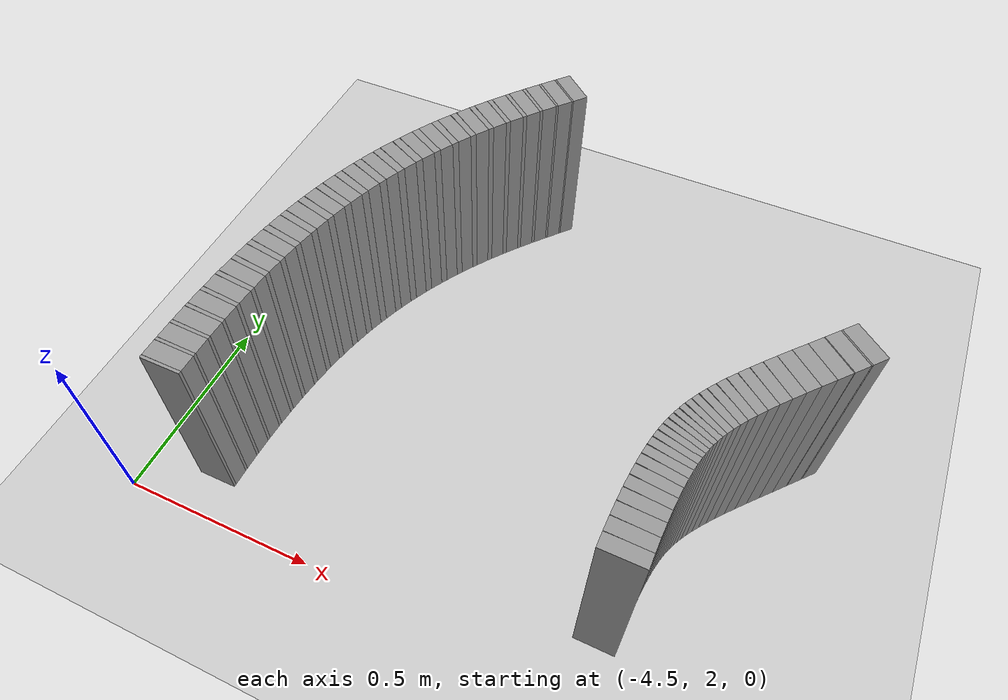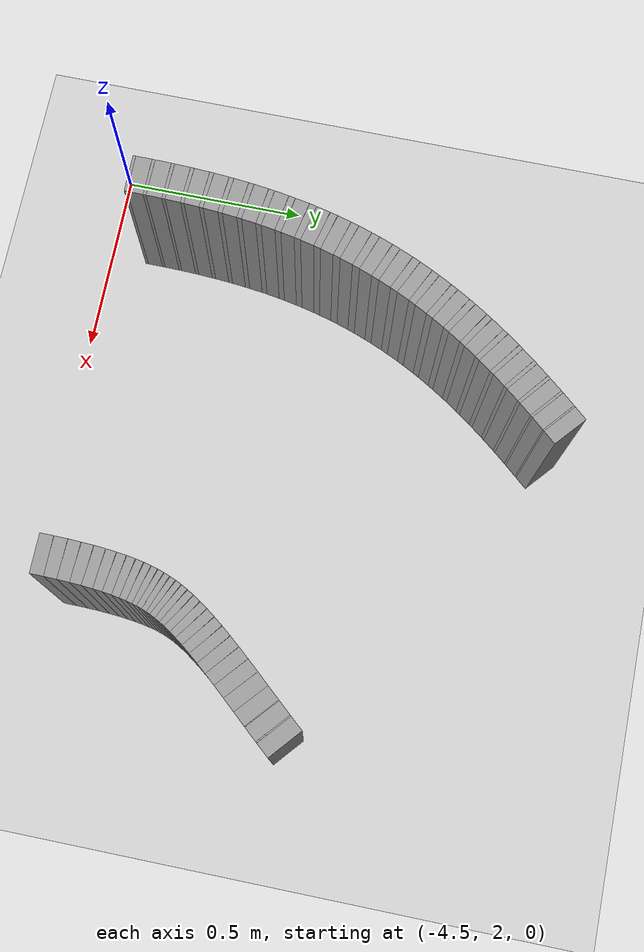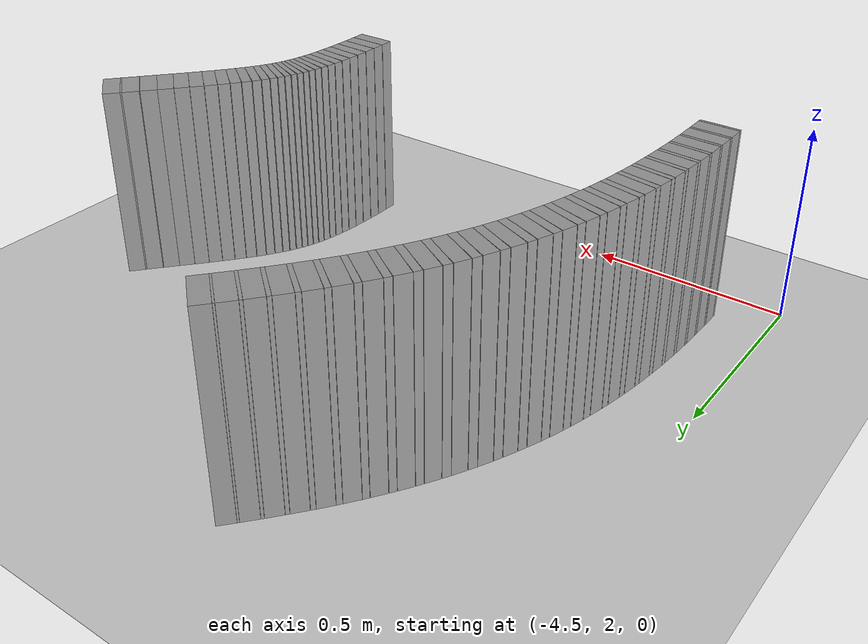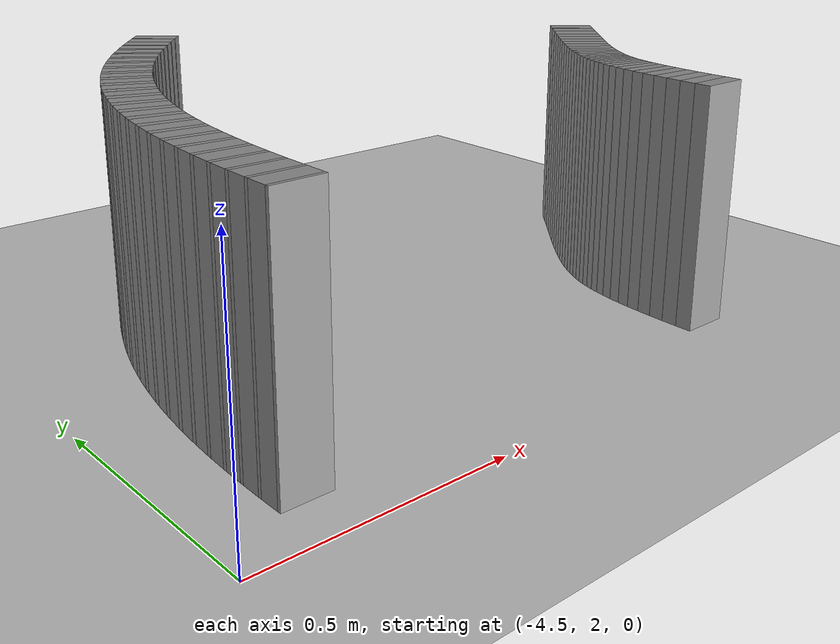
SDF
<sdf version="1.6">
 <world name="default">
  <include><uri>model://ground_plane</uri></include>
  <include><uri>model://sun</uri></include>
  <model name="wall_909_outward">
   <static>true</static>
   <link name="link">
    <collision name="collision">
     <geometry><box><size>0.0419745556017227 0.1 0.5</size></box></geometry>
    </collision>
    <visual name="visual">
     <geometry><box><size>0.0419745556017227 0.1 0.5</size></box></geometry>
     <material>
      <script><uri>file://media/materials/scripts/gazebo.material</uri><name>Gazebo/Gray</name></script>
     </material>
    </visual>
   </link>
   <pose>-3.0135326649670446 2.7645553285052182 0.25 0 0 -2.2796906015436953</pose>
  </model>
  <model name="wall_910_outward">
   <static>true</static>
   <link name="link">
    <collision name="collision">
     <geometry><box><size>0.0038442541309718944 0.1 0.5</size></box></geometry>
    </collision>
    <visual name="visual">
     <geometry><box><size>0.0038442541309718944 0.1 0.5</size></box></geometry>
     <material>
      <script><uri>file://media/materials/scripts/gazebo.material</uri><name>Gazebo/Gray</name></script>
     </material>
    </visual>
   </link>
   <pose>-3.0284521688805657 2.7471700290213708 0.25 0 0 -2.2835348651433045</pose>
  </model>
  <model name="wall_911_outward">
   <static>true</static>
   <link name="link">
    <collision name="collision">
     <geometry><box><size>0.04174719844510163 0.1 0.5</size></box></geometry>
    </collision>
    <visual name="visual">
     <geometry><box><size>0.04174719844510163 0.1 0.5</size></box></geometry>
     <material>
      <script><uri>file://media/materials/scripts/gazebo.material</uri><name>Gazebo/Gray</name></script>
     </material>
    </visual>
   </link>
   <pose>-3.043419088791568 2.7299759645674877 0.25 0 0 -2.287379128742932</pose>
  </model>
  <model name="wall_912_outward">
   <static>true</static>
   <link name="link">
    <collision name="collision">
     <geometry><box><size>0.0018224459277876729 0.1 0.5</size></box></geometry>
    </collision>
    <visual name="visual">
     <geometry><box><size>0.0018224459277876729 0.1 0.5</size></box></geometry>
     <material>
      <script><uri>file://media/materials/scripts/gazebo.material</uri><name>Gazebo/Gray</name></script>
     </material>
    </visual>
   </link>
   <pose>-3.057728867379958 2.7135501114306417 0.25 0 0 -2.2892015756794986</pose>
  </model>
  <model name="wall_913_outward">
   <static>true</static>
   <link name="link">
    <collision name="collision">
     <geometry><box><size>0.04133575827013945 0.1 0.5</size></box></geometry>
    </collision>
    <visual name="visual">
     <geometry><box><size>0.04133575827013945 0.1 0.5</size></box></geometry>
     <material>
      <script><uri>file://media/materials/scripts/gazebo.material</uri><name>Gazebo/Gray</name></script>
     </material>
    </visual>
   </link>
   <pose>-3.0719602409076434 2.6973289649741616 0.25 0 0 -2.2910240226161456</pose>
  </model>
  <model name="wall_914_outward">
   <static>true</static>
   <link name="link">
    <collision name="collision">
     <geometry><box><size>0.039814587345602365 0.1 0.5</size></box></geometry>
    </collision>
    <visual name="visual">
     <geometry><box><size>0.039814587345602365 0.1 0.5</size></box></geometry>
     <material>
      <script><uri>file://media/materials/scripts/gazebo.material</uri><name>Gazebo/Gray</name></script>
     </material>
    </visual>
   </link>
   <pose>-3.0987146115571638 2.6668240767798292 0.25 0 0 -2.2905415181057474</pose>
  </model>
  <model name="wall_915_outward">
   <static>true</static>
   <link name="link">
    <collision name="collision">
     <geometry><box><size>0.037309860496142794 0.1 0.5</size></box></geometry>
    </collision>
    <visual name="visual">
     <geometry><box><size>0.037309860496142794 0.1 0.5</size></box></geometry>
     <material>
      <script><uri>file://media/materials/scripts/gazebo.material</uri><name>Gazebo/Gray</name></script>
     </material>
    </visual>
   </link>
   <pose>-3.12406837688091 2.6377685529564325 0.25 0 0 -2.28583308934956</pose>
  </model>
  <model name="wall_916_outward">
   <static>true</static>
   <link name="link">
    <collision name="collision">
     <geometry><box><size>0.034755076385323234 0.1 0.5</size></box></geometry>
    </collision>
    <visual name="visual">
     <geometry><box><size>0.034755076385323234 0.1 0.5</size></box></geometry>
     <material>
      <script><uri>file://media/materials/scripts/gazebo.material</uri><name>Gazebo/Gray</name></script>
     </material>
    </visual>
   </link>
   <pose>-3.147574969666726 2.610460076313749 0.25 0 0 -2.27688071241777</pose>
  </model>
  <model name="wall_917_outward">
   <static>true</static>
   <link name="link">
    <collision name="collision">
     <geometry><box><size>0.03216466017400099 0.1 0.5</size></box></geometry>
    </collision>
    <visual name="visual">
     <geometry><box><size>0.03216466017400099 0.1 0.5</size></box></geometry>
     <material>
      <script><uri>file://media/materials/scripts/gazebo.material</uri><name>Gazebo/Gray</name></script>
     </material>
    </visual>
   </link>
   <pose>-3.1691227966086686 2.5848631047142794 0.25 0 0 -2.263641472560386</pose>
  </model>
  <model name="wall_918_outward">
   <static>true</static>
   <link name="link">
    <collision name="collision">
     <geometry><box><size>0.029571068474217883 0.1 0.5</size></box></geometry>
    </collision>
    <visual name="visual">
     <geometry><box><size>0.029571068474217883 0.1 0.5</size></box></geometry>
     <material>
      <script><uri>file://media/materials/scripts/gazebo.material</uri><name>Gazebo/Gray</name></script>
     </material>
    </visual>
   </link>
   <pose>-3.1886381864899103 2.5609486408674607 0.25 0 0 -2.2461169072106277</pose>
  </model>
  <model name="wall_919_outward">
   <static>true</static>
   <link name="link">
    <collision name="collision">
     <geometry><box><size>0.027004095124783817 0.1 0.5</size></box></geometry>
    </collision>
    <visual name="visual">
     <geometry><box><size>0.027004095124783817 0.1 0.5</size></box></geometry>
     <material>
      <script><uri>file://media/materials/scripts/gazebo.material</uri><name>Gazebo/Gray</name></script>
     </material>
    </visual>
   </link>
   <pose>-3.2060908213170416 2.53868884945527 0.25 0 0 -2.2243586358879615</pose>
  </model>
  <model name="wall_920_outward">
   <static>true</static>
   <link name="link">
    <collision name="collision">
     <geometry><box><size>0.024508053875466323 0.1 0.5</size></box></geometry>
    </collision>
    <visual name="visual">
     <geometry><box><size>0.024508053875466323 0.1 0.5</size></box></geometry>
     <material>
      <script><uri>file://media/materials/scripts/gazebo.material</uri><name>Gazebo/Gray</name></script>
     </material>
    </visual>
   </link>
   <pose>-3.2214964800221626 2.5180507774665126 0.25 0 0 -2.1984521246347404</pose>
  </model>
  <model name="wall_921_outward">
   <static>true</static>
   <link name="link">
    <collision name="collision">
     <geometry><box><size>0.022133533952846295 0.1 0.5</size></box></geometry>
    </collision>
    <visual name="visual">
     <geometry><box><size>0.022133533952846295 0.1 0.5</size></box></geometry>
     <material>
      <script><uri>file://media/materials/scripts/gazebo.material</uri><name>Gazebo/Gray</name></script>
     </material>
    </visual>
   </link>
   <pose>-3.2349211766748116 2.4989846827942146 0.25 0 0 -2.1685826450441787</pose>
  </model>
  <model name="wall_922_outward">
   <static>true</static>
   <link name="link">
    <collision name="collision">
     <geometry><box><size>0.019943582292460026 0.1 0.5</size></box></geometry>
    </collision>
    <visual name="visual">
     <geometry><box><size>0.019943582292460026 0.1 0.5</size></box></geometry>
     <material>
      <script><uri>file://media/materials/scripts/gazebo.material</uri><name>Gazebo/Gray</name></script>
     </material>
    </visual>
   </link>
   <pose>-3.2464820028141594 2.481410732345762 0.25 0 0 -2.1349938035231513</pose>
  </model>
  <model name="wall_923_outward">
   <static>true</static>
   <link name="link">
    <collision name="collision">
     <geometry><box><size>0.018015155847510837 0.1 0.5</size></box></geometry>
    </collision>
    <visual name="visual">
     <geometry><box><size>0.018015155847510837 0.1 0.5</size></box></geometry>
     <material>
      <script><uri>file://media/materials/scripts/gazebo.material</uri><name>Gazebo/Gray</name></script>
     </material>
    </visual>
   </link>
   <pose>-3.2563467035604603 2.46520019048793 0.25 0 0 -2.098067568934404</pose>
  </model>
  <model name="wall_924_outward">
   <static>true</static>
   <link name="link">
    <collision name="collision">
     <geometry><box><size>0.016430310365611652 0.1 0.5</size></box></geometry>
    </collision>
    <visual name="visual">
     <geometry><box><size>0.016430310365611652 0.1 0.5</size></box></geometry>
     <material>
      <script><uri>file://media/materials/scripts/gazebo.material</uri><name>Gazebo/Gray</name></script>
     </material>
    </visual>
   </link>
   <pose>-3.2647271978157577 2.450157824180835 0.25 0 0 -2.0582902916868373</pose>
  </model>
  <model name="wall_925_outward">
   <static>true</static>
   <link name="link">
    <collision name="collision">
     <geometry><box><size>0.015279364430418777 0.1 0.5</size></box></geometry>
    </collision>
    <visual name="visual">
     <geometry><box><size>0.015279364430418777 0.1 0.5</size></box></geometry>
     <material>
      <script><uri>file://media/materials/scripts/gazebo.material</uri><name>Gazebo/Gray</name></script>
     </material>
    </visual>
   </link>
   <pose>-3.2718673906353346 2.4360056891312913 0.25 0 0 -2.0163103106993865</pose>
  </model>
  <model name="wall_926_outward">
   <static>true</static>
   <link name="link">
    <collision name="collision">
     <geometry><box><size>0.014626676339132439 0.1 0.5</size></box></geometry>
    </collision>
    <visual name="visual">
     <geometry><box><size>0.014626676339132439 0.1 0.5</size></box></geometry>
     <material>
      <script><uri>file://media/materials/scripts/gazebo.material</uri><name>Gazebo/Gray</name></script>
     </material>
    </visual>
   </link>
   <pose>-3.2780216006265825 2.4223816940580702 0.25 0 0 -1.9728989055327766</pose>
  </model>
  <model name="wall_927_outward">
   <static>true</static>
   <link name="link">
    <collision name="collision">
     <geometry><box><size>0.014528052600475112 0.1 0.5</size></box></geometry>
    </collision>
    <visual name="visual">
     <geometry><box><size>0.014528052600475112 0.1 0.5</size></box></geometry>
     <material>
      <script><uri>file://media/materials/scripts/gazebo.material</uri><name>Gazebo/Gray</name></script>
     </material>
    </visual>
   </link>
   <pose>-3.2834297649840813 2.4088484570207322 0.25 0 0 -1.9289039464015667</pose>
  </model>
  <model name="wall_928_outward">
   <static>true</static>
   <link name="link">
    <collision name="collision">
     <geometry><box><size>0.015002083608098278 0.1 0.5</size></box></geometry>
    </collision>
    <visual name="visual">
     <geometry><box><size>0.015002083608098278 0.1 0.5</size></box></geometry>
     <material>
      <script><uri>file://media/materials/scripts/gazebo.material</uri><name>Gazebo/Gray</name></script>
     </material>
    </visual>
   </link>
   <pose>-3.2882959667841662 2.3949120457588577 0.25 0 0 -1.8852629850738096</pose>
  </model>
  <model name="wall_929_outward">
   <static>true</static>
   <link name="link">
    <collision name="collision">
     <geometry><box><size>0.016028910324818856 0.1 0.5</size></box></geometry>
    </collision>
    <visual name="visual">
     <geometry><box><size>0.016028910324818856 0.1 0.5</size></box></geometry>
     <material>
      <script><uri>file://media/materials/scripts/gazebo.material</uri><name>Gazebo/Gray</name></script>
     </material>
    </visual>
   </link>
   <pose>-3.2927698019674296 2.380059187326829 0.25 0 0 -1.8428665278918794</pose>
  </model>
  <model name="wall_930_outward">
   <static>true</static>
   <link name="link">
    <collision name="collision">
     <geometry><box><size>0.017539279231176423 0.1 0.5</size></box></geometry>
    </collision>
    <visual name="visual">
     <geometry><box><size>0.017539279231176423 0.1 0.5</size></box></geometry>
     <material>
      <script><uri>file://media/materials/scripts/gazebo.material</uri><name>Gazebo/Gray</name></script>
     </material>
    </visual>
   </link>
   <pose>-3.2969378271212157 2.3638043655285683 0.25 0 0 -1.8025594237730262</pose>
  </model>
  <model name="wall_931_outward">
   <static>true</static>
   <link name="link">
    <collision name="collision">
     <geometry><box><size>0.019429987067052068 0.1 0.5</size></box></geometry>
    </collision>
    <visual name="visual">
     <geometry><box><size>0.019429987067052068 0.1 0.5</size></box></geometry>
     <material>
      <script><uri>file://media/materials/scripts/gazebo.material</uri><name>Gazebo/Gray</name></script>
     </material>
    </visual>
   </link>
   <pose>-3.3008266743758155 2.3457367666178754 0.25 0 0 -1.7649648290323132</pose>
  </model>
  <model name="wall_932_outward">
   <static>true</static>
   <link name="link">
    <collision name="collision">
     <geometry><box><size>0.021591316623172055 0.1 0.5</size></box></geometry>
    </collision>
    <visual name="visual">
     <geometry><box><size>0.021591316623172055 0.1 0.5</size></box></geometry>
     <material>
      <script><uri>file://media/materials/scripts/gazebo.material</uri><name>Gazebo/Gray</name></script>
     </material>
    </visual>
   </link>
   <pose>-3.3044185074515884 2.3255461408740774 0.25 0 0 -1.7305498512555522</pose>
  </model>
  <model name="wall_933_outward">
   <static>true</static>
   <link name="link">
    <collision name="collision">
     <geometry><box><size>0.02389491306081609 0.1 0.5</size></box></geometry>
    </collision>
    <visual name="visual">
     <geometry><box><size>0.02389491306081609 0.1 0.5</size></box></geometry>
     <material>
      <script><uri>file://media/materials/scripts/gazebo.material</uri><name>Gazebo/Gray</name></script>
     </material>
    </visual>
   </link>
   <pose>-3.3076699003500067 2.303039390633496 0.25 0 0 -1.6995535963720907</pose>
  </model>
  <model name="wall_934_outward">
   <static>true</static>
   <link name="link">
    <collision name="collision">
     <geometry><box><size>0.02620466319532006 0.1 0.5</size></box></geometry>
    </collision>
    <visual name="visual">
     <geometry><box><size>0.02620466319532006 0.1 0.5</size></box></geometry>
     <material>
      <script><uri>file://media/materials/scripts/gazebo.material</uri><name>Gazebo/Gray</name></script>
     </material>
    </visual>
   </link>
   <pose>-3.3105276391162253 2.2781555339091257 0.25 0 0 -1.6719940272295823</pose>
  </model>
  <model name="wall_935_outward">
   <static>true</static>
   <link name="link">
    <collision name="collision">
     <geometry><box><size>0.028414012027109463 0.1 0.5</size></box></geometry>
    </collision>
    <visual name="visual">
     <geometry><box><size>0.028414012027109463 0.1 0.5</size></box></geometry>
     <material>
      <script><uri>file://media/materials/scripts/gazebo.material</uri><name>Gazebo/Gray</name></script>
     </material>
    </visual>
   </link>
   <pose>-3.3129421031068045 2.2509551665681977 0.25 0 0 -1.6476509926844043</pose>
  </model>
  <model name="wall_936_outward">
   <static>true</static>
   <link name="link">
    <collision name="collision">
     <geometry><box><size>0.030444279558188493 0.1 0.5</size></box></geometry>
    </collision>
    <visual name="visual">
     <geometry><box><size>0.030444279558188493 0.1 0.5</size></box></geometry>
     <material>
      <script><uri>file://media/materials/scripts/gazebo.material</uri><name>Gazebo/Gray</name></script>
     </material>
    </visual>
   </link>
   <pose>-3.314875818794246 2.2215913138131116 0.25 0 0 -1.6261989795383085</pose>
  </model>
  <model name="wall_937_outward">
   <static>true</static>
   <link name="link">
    <collision name="collision">
     <geometry><box><size>0.03221851788245754 0.1 0.5</size></box></geometry>
    </collision>
    <visual name="visual">
     <geometry><box><size>0.03221851788245754 0.1 0.5</size></box></geometry>
     <material>
      <script><uri>file://media/materials/scripts/gazebo.material</uri><name>Gazebo/Gray</name></script>
     </material>
    </visual>
   </link>
   <pose>-3.3163048937256683 2.1902939386191482 0.25 0 0 -1.6071908499437895</pose>
  </model>
  <model name="wall_938_outward">
   <static>true</static>
   <link name="link">
    <collision name="collision">
     <geometry><box><size>0.03369619608806785 0.1 0.5</size></box></geometry>
    </collision>
    <visual name="visual">
     <geometry><box><size>0.03369619608806785 0.1 0.5</size></box></geometry>
     <material>
      <script><uri>file://media/materials/scripts/gazebo.material</uri><name>Gazebo/Gray</name></script>
     </material>
    </visual>
   </link>
   <pose>-3.3172159920450426 2.1573503830474845 0.25 0 0 -1.590083909845849</pose>
  </model>
  <model name="wall_939_outward">
   <static>true</static>
   <link name="link">
    <collision name="collision">
     <geometry><box><size>0.03486434552134512 0.1 0.5</size></box></geometry>
    </collision>
    <visual name="visual">
     <geometry><box><size>0.03486434552134512 0.1 0.5</size></box></geometry>
     <material>
      <script><uri>file://media/materials/scripts/gazebo.material</uri><name>Gazebo/Gray</name></script>
     </material>
    </visual>
   </link>
   <pose>-3.317602885910296 2.1230733560793364 0.25 0 0 -1.574350390533005</pose>
  </model>
  <model name="wall_567_inward">
   <static>true</static>
   <link name="link">
    <collision name="collision">
     <geometry><box><size>0.04072507904058937 0.1 0.5</size></box></geometry>
    </collision>
    <visual name="visual">
     <geometry><box><size>0.04072507904058937 0.1 0.5</size></box></geometry>
     <material>
      <script><uri>file://media/materials/scripts/gazebo.material</uri><name>Gazebo/Gray</name></script>
     </material>
    </visual>
   </link>
   <pose>-3.87948533511668 3.293013164258174 0.25 0 0 -2.2858330893495604</pose>
  </model>
  <model name="wall_568_inward">
   <static>true</static>
   <link name="link">
    <collision name="collision">
     <geometry><box><size>0.004476173518231503 0.1 0.5</size></box></geometry>
    </collision>
    <visual name="visual">
     <geometry><box><size>0.004476173518231503 0.1 0.5</size></box></geometry>
     <material>
      <script><uri>file://media/materials/scripts/gazebo.material</uri><name>Gazebo/Gray</name></script>
     </material>
    </visual>
   </link>
   <pose>-3.894295747666076 3.2759415774770755 0.25 0 0 -2.2813569008836607</pose>
  </model>
  <model name="wall_569_inward">
   <static>true</static>
   <link name="link">
    <collision name="collision">
     <geometry><box><size>0.04030304387587723 0.1 0.5</size></box></geometry>
    </collision>
    <visual name="visual">
     <geometry><box><size>0.04030304387587723 0.1 0.5</size></box></geometry>
     <material>
      <script><uri>file://media/materials/scripts/gazebo.material</uri><name>Gazebo/Gray</name></script>
     </material>
    </visual>
   </link>
   <pose>-3.9088310624224936 3.258911653845773 0.25 0 0 -2.2768807124177566</pose>
  </model>
  <model name="wall_570_inward">
   <static>true</static>
   <link name="link">
    <collision name="collision">
     <geometry><box><size>0.006619571584196863 0.1 0.5</size></box></geometry>
    </collision>
    <visual name="visual">
     <geometry><box><size>0.006619571584196863 0.1 0.5</size></box></geometry>
     <material>
      <script><uri>file://media/materials/scripts/gazebo.material</uri><name>Gazebo/Gray</name></script>
     </material>
    </visual>
   </link>
   <pose>-3.924037432741721 3.2410455871410218 0.25 0 0 -2.270261092489117</pose>
  </model>
  <model name="wall_571_inward">
   <static>true</static>
   <link name="link">
    <collision name="collision">
     <geometry><box><size>0.039855771949156515 0.1 0.5</size></box></geometry>
    </collision>
    <visual name="visual">
     <geometry><box><size>0.039855771949156515 0.1 0.5</size></box></geometry>
     <material>
      <script><uri>file://media/materials/scripts/gazebo.material</uri><name>Gazebo/Gray</name></script>
     </material>
    </visual>
   </link>
   <pose>-3.9388968169506464 3.223179832192452 0.25 0 0 -2.2636414725603937</pose>
  </model>
  <model name="wall_572_inward">
   <static>true</static>
   <link name="link">
    <collision name="collision">
     <geometry><box><size>0.008762170550812852 0.1 0.5</size></box></geometry>
    </collision>
    <visual name="visual">
     <geometry><box><size>0.008762170550812852 0.1 0.5</size></box></geometry>
     <material>
      <script><uri>file://media/materials/scripts/gazebo.material</uri><name>Gazebo/Gray</name></script>
     </material>
    </visual>
   </link>
   <pose>-3.9543940154342287 3.204451345352645 0.25 0 0 -2.2548791898855116</pose>
  </model>
  <model name="wall_573_inward">
   <static>true</static>
   <link name="link">
    <collision name="collision">
     <geometry><box><size>0.03939210438152865 0.1 0.5</size></box></geometry>
    </collision>
    <visual name="visual">
     <geometry><box><size>0.03939210438152865 0.1 0.5</size></box></geometry>
     <material>
      <script><uri>file://media/materials/scripts/gazebo.material</uri><name>Gazebo/Gray</name></script>
     </material>
    </visual>
   </link>
   <pose>-3.969475636072412 3.1856831104226413 0.25 0 0 -2.2461169072106246</pose>
  </model>
  <model name="wall_574_inward">
   <static>true</static>
   <link name="link">
    <collision name="collision">
     <geometry><box><size>0.010878921061513593 0.1 0.5</size></box></geometry>
    </collision>
    <visual name="visual">
     <geometry><box><size>0.010878921061513593 0.1 0.5</size></box></geometry>
     <material>
      <script><uri>file://media/materials/scripts/gazebo.material</uri><name>Gazebo/Gray</name></script>
     </material>
    </visual>
   </link>
   <pose>-3.985142652552049 3.166027935165401 0.25 0 0 -2.235237771549298</pose>
  </model>
  <model name="wall_575_inward">
   <static>true</static>
   <link name="link">
    <collision name="collision">
     <geometry><box><size>0.038920867635262854 0.1 0.5</size></box></geometry>
    </collision>
    <visual name="visual">
     <geometry><box><size>0.038920867635262854 0.1 0.5</size></box></geometry>
     <material>
      <script><uri>file://media/materials/scripts/gazebo.material</uri><name>Gazebo/Gray</name></script>
     </material>
    </visual>
   </link>
   <pose>-4.000329032914957 3.1462955743914423 0.25 0 0 -2.224358635887945</pose>
  </model>
  <model name="wall_576_inward">
   <static>true</static>
   <link name="link">
    <collision name="collision">
     <geometry><box><size>0.012952893398692204 0.1 0.5</size></box></geometry>
    </collision>
    <visual name="visual">
     <geometry><box><size>0.012952893398692204 0.1 0.5</size></box></geometry>
     <material>
      <script><uri>file://media/materials/scripts/gazebo.material</uri><name>Gazebo/Gray</name></script>
     </material>
    </visual>
   </link>
   <pose>-4.0160322034412355 3.125653116695054 0.25 0 0 -2.2114053802613394</pose>
  </model>
  <model name="wall_577_inward">
   <static>true</static>
   <link name="link">
    <collision name="collision">
     <geometry><box><size>0.03845296908134382 0.1 0.5</size></box></geometry>
    </collision>
    <visual name="visual">
     <geometry><box><size>0.03845296908134382 0.1 0.5</size></box></geometry>
     <material>
      <script><uri>file://media/materials/scripts/gazebo.material</uri><name>Gazebo/Gray</name></script>
     </material>
    </visual>
   </link>
   <pose>-4.031193804109228 3.104898703980974 0.25 0 0 -2.198452124634742</pose>
  </model>
  <model name="wall_578_inward">
   <static>true</static>
   <link name="link">
    <collision name="collision"><geometry><box><size>0.014934184611355 0.1 0.5</size></box></geometry></collision>
    <visual name="visual">
     <geometry><box><size>0.014934184611355 0.1 0.5</size></box></geometry>
     <material>
      <script><uri>file://media/materials/scripts/gazebo.material</uri><name>Gazebo/Gray</name></script>
     </material>
    </visual>
   </link>
   <pose>-4.046778829457251 3.083227940070208 0.25 0 0 -2.183517384839459</pose>
  </model>
  <model name="wall_579_inward">
   <static>true</static>
   <link name="link">
    <collision name="collision">
     <geometry><box><size>0.03799945904439414 0.1 0.5</size></box></geometry>
    </collision>
    <visual name="visual">
     <geometry><box><size>0.03799945904439414 0.1 0.5</size></box></geometry>
     <material>
      <script><uri>file://media/materials/scripts/gazebo.material</uri><name>Gazebo/Gray</name></script>
     </material>
    </visual>
   </link>
   <pose>-4.061766436663962 3.0614143515469077 0.25 0 0 -2.16858264504418</pose>
  </model>
  <model name="wall_580_inward">
   <static>true</static>
   <link name="link">
    <collision name="collision">
     <geometry><box><size>0.01679363128671919 0.1 0.5</size></box></geometry>
    </collision>
    <visual name="visual">
     <geometry><box><size>0.01679363128671919 0.1 0.5</size></box></geometry>
     <material>
      <script><uri>file://media/materials/scripts/gazebo.material</uri><name>Gazebo/Gray</name></script>
     </material>
    </visual>
   </link>
   <pose>-4.0770683720087835 3.038690433203353 0.25 0 0 -2.1517882242836763</pose>
  </model>
  <model name="wall_581_inward">
   <static>true</static>
   <link name="link">
    <collision name="collision">
     <geometry><box><size>0.03757419000881924 0.1 0.5</size></box></geometry>
    </collision>
    <visual name="visual">
     <geometry><box><size>0.03757419000881924 0.1 0.5</size></box></geometry>
     <material>
      <script><uri>file://media/materials/scripts/gazebo.material</uri><name>Gazebo/Gray</name></script>
     </material>
    </visual>
   </link>
   <pose>-4.091723163056766 3.0157959446919493 0.25 0 0 -2.134993803523162</pose>
  </model>
  <model name="wall_582_inward">
   <static>true</static>
   <link name="link">
    <collision name="collision">
     <geometry><box><size>0.018462068340401403 0.1 0.5</size></box></geometry>
    </collision>
    <visual name="visual">
     <geometry><box><size>0.018462068340401403 0.1 0.5</size></box></geometry>
     <material>
      <script><uri>file://media/materials/scripts/gazebo.material</uri><name>Gazebo/Gray</name></script>
     </material>
    </visual>
   </link>
   <pose>-4.106560664327359 2.992030318209004 0.25 0 0 -2.1165306862287534</pose>
  </model>
  <model name="wall_583_inward">
   <static>true</static>
   <link name="link">
    <collision name="collision">
     <geometry><box><size>0.03719339431382774 0.1 0.5</size></box></geometry>
    </collision>
    <visual name="visual">
     <geometry><box><size>0.03719339431382774 0.1 0.5</size></box></geometry>
     <material>
      <script><uri>file://media/materials/scripts/gazebo.material</uri><name>Gazebo/Gray</name></script>
     </material>
    </visual>
   </link>
   <pose>-4.120709426559133 2.968069169637321 0.25 0 0 -2.098067568934416</pose>
  </model>
  <model name="wall_584_inward">
   <static>true</static>
   <link name="link">
    <collision name="collision">
     <geometry><box><size>0.01988732746487957 0.1 0.5</size></box></geometry>
    </collision>
    <visual name="visual">
     <geometry><box><size>0.01988732746487957 0.1 0.5</size></box></geometry>
     <material>
      <script><uri>file://media/materials/scripts/gazebo.material</uri><name>Gazebo/Gray</name></script>
     </material>
    </visual>
   </link>
   <pose>-4.134898397443019 2.943307260157999 0.25 0 0 -2.0781789303105906</pose>
  </model>
  <model name="wall_585_inward">
   <static>true</static>
   <link name="link">
    <collision name="collision">
     <geometry><box><size>0.036872477882333034 0.1 0.5</size></box></geometry>
    </collision>
    <visual name="visual">
     <geometry><box><size>0.036872477882333034 0.1 0.5</size></box></geometry>
     <material>
      <script><uri>file://media/materials/scripts/gazebo.material</uri><name>Gazebo/Gray</name></script>
     </material>
    </visual>
   </link>
   <pose>-4.148365715434515 2.9183277143434863 0.25 0 0 -2.058290291686828</pose>
  </model>
  <model name="wall_586_inward">
   <static>true</static>
   <link name="link">
    <collision name="collision">
     <geometry><box><size>0.020988449233719824 0.1 0.5</size></box></geometry>
    </collision>
    <visual name="visual">
     <geometry><box><size>0.020988449233719824 0.1 0.5</size></box></geometry>
     <material>
      <script><uri>file://media/materials/scripts/gazebo.material</uri><name>Gazebo/Gray</name></script>
     </material>
    </visual>
   </link>
   <pose>-4.161721445637385 2.8926662460529027 0.25 0 0 -2.037300301193121</pose>
  </model>
  <model name="wall_587_inward">
   <static>true</static>
   <link name="link">
    <collision name="collision">
     <geometry><box><size>0.03663045725098112 0.1 0.5</size></box></geometry>
    </collision>
    <visual name="visual">
     <geometry><box><size>0.03663045725098112 0.1 0.5</size></box></geometry>
     <material>
      <script><uri>file://media/materials/scripts/gazebo.material</uri><name>Gazebo/Gray</name></script>
     </material>
    </visual>
   </link>
   <pose>-4.174333827522865 2.8667659035615003 0.25 0 0 -2.016310310699372</pose>
  </model>
  <model name="wall_588_inward">
   <static>true</static>
   <link name="link">
    <collision name="collision">
     <geometry><box><size>0.021703998228274162 0.1 0.5</size></box></geometry>
    </collision>
    <visual name="visual">
     <geometry><box><size>0.021703998228274162 0.1 0.5</size></box></geometry>
     <material>
      <script><uri>file://media/materials/scripts/gazebo.material</uri><name>Gazebo/Gray</name></script>
     </material>
    </visual>
   </link>
   <pose>-4.186688977455905 2.840346520411699 0.25 0 0 -1.99460460811613</pose>
  </model>
  <model name="wall_589_inward">
   <static>true</static>
   <link name="link">
    <collision name="collision">
     <geometry><box><size>0.03648174653025941 0.1 0.5</size></box></geometry>
    </collision>
    <visual name="visual">
     <geometry><box><size>0.03648174653025941 0.1 0.5</size></box></geometry>
     <material>
      <script><uri>file://media/materials/scripts/gazebo.material</uri><name>Gazebo/Gray</name></script>
     </material>
    </visual>
   </link>
   <pose>-4.19829033724028 2.813668619136555 0.25 0 0 -1.9728989055327943</pose>
  </model>
  <model name="wall_590_inward">
   <static>true</static>
   <link name="link">
    <collision name="collision">
     <geometry><box><size>0.0219957055517571 0.1 0.5</size></box></geometry>
    </collision>
    <visual name="visual">
     <geometry><box><size>0.0219957055517571 0.1 0.5</size></box></geometry>
     <material>
      <script><uri>file://media/materials/scripts/gazebo.material</uri><name>Gazebo/Gray</name></script>
     </material>
    </visual>
   </link>
   <pose>-4.209509379579554 2.7866697465638164 0.25 0 0 -1.9509014259672064</pose>
  </model>
  <model name="wall_591_inward">
   <static>true</static>
   <link name="link">
    <collision name="collision">
     <geometry><box><size>0.03644053902183186 0.1 0.5</size></box></geometry>
    </collision>
    <visual name="visual">
     <geometry><box><size>0.03644053902183186 0.1 0.5</size></box></geometry>
     <material>
      <script><uri>file://media/materials/scripts/gazebo.material</uri><name>Gazebo/Gray</name></script>
     </material>
    </visual>
   </link>
   <pose>-4.21997603225719 2.759392450289378 0.25 0 0 -1.9289039464015412</pose>
  </model>
  <model name="wall_592_inward">
   <static>true</static>
   <link name="link">
    <collision name="collision">
     <geometry><box><size>0.021818749128577192 0.1 0.5</size></box></geometry>
    </collision>
    <visual name="visual">
     <geometry><box><size>0.021818749128577192 0.1 0.5</size></box></geometry>
     <material>
      <script><uri>file://media/materials/scripts/gazebo.material</uri><name>Gazebo/Gray</name></script>
     </material>
    </visual>
   </link>
   <pose>-4.229962207173692 2.732029741425337 0.25 0 0 -1.907083465737679</pose>
  </model>
  <model name="wall_593_inward">
   <static>true</static>
   <link name="link">
    <collision name="collision">
     <geometry><box><size>0.03651475805059908 0.1 0.5</size></box></geometry>
    </collision>
    <visual name="visual">
     <geometry><box><size>0.03651475805059908 0.1 0.5</size></box></geometry>
     <material>
      <script><uri>file://media/materials/scripts/gazebo.material</uri><name>Gazebo/Gray</name></script>
     </material>
    </visual>
   </link>
   <pose>-4.239209309149241 2.704369376475616 0.25 0 0 -1.8852629850738107</pose>
  </model>
  <model name="wall_594_inward">
   <static>true</static>
   <link name="link">
    <collision name="collision">
     <geometry><box><size>0.021196641003332895 0.1 0.5</size></box></geometry>
    </collision>
    <visual name="visual">
     <geometry><box><size>0.021196641003332895 0.1 0.5</size></box></geometry>
     <material>
      <script><uri>file://media/materials/scripts/gazebo.material</uri><name>Gazebo/Gray</name></script>
     </material>
    </visual>
   </link>
   <pose>-4.247920277305251 2.6768614961279185 0.25 0 0 -1.864064756482798</pose>
  </model>
  <model name="wall_595_inward">
   <static>true</static>
   <link name="link">
    <collision name="collision">
     <geometry><box><size>0.03670775306054812 0.1 0.5</size></box></geometry>
    </collision>
    <visual name="visual">
     <geometry><box><size>0.03670775306054812 0.1 0.5</size></box></geometry>
     <material>
      <script><uri>file://media/materials/scripts/gazebo.material</uri><name>Gazebo/Gray</name></script>
     </material>
    </visual>
   </link>
   <pose>-4.255916232812925 2.6490369206380775 0.25 0 0 -1.8428665278918839</pose>
  </model>
  <model name="wall_596_inward">
   <static>true</static>
   <link name="link">
    <collision name="collision">
     <geometry><box><size>0.02015218780700805 0.1 0.5</size></box></geometry>
    </collision>
    <visual name="visual">
     <geometry><box><size>0.02015218780700805 0.1 0.5</size></box></geometry>
     <material>
      <script><uri>file://media/materials/scripts/gazebo.material</uri><name>Gazebo/Gray</name></script>
     </material>
    </visual>
   </link>
   <pose>-4.263359970695687 2.621600104617656 0.25 0 0 -1.8227129758324698</pose>
  </model>
  <model name="wall_597_inward">
   <static>true</static>
   <link name="link">
    <collision name="collision">
     <geometry><box><size>0.03701717557215922 0.1 0.5</size></box></geometry>
    </collision>
    <visual name="visual">
     <geometry><box><size>0.03701717557215922 0.1 0.5</size></box></geometry>
     <material>
      <script><uri>file://media/materials/scripts/gazebo.material</uri><name>Gazebo/Gray</name></script>
     </material>
    </visual>
   </link>
   <pose>-4.2701228521313235 2.593828325470861 0.25 0 0 -1.8025594237730178</pose>
  </model>
  <model name="wall_598_inward">
   <static>true</static>
   <link name="link">
    <collision name="collision">
     <geometry><box><size>0.018796190422108852 0.1 0.5</size></box></geometry>
    </collision>
    <visual name="visual">
     <geometry><box><size>0.018796190422108852 0.1 0.5</size></box></geometry>
     <material>
      <script><uri>file://media/materials/scripts/gazebo.material</uri><name>Gazebo/Gray</name></script>
     </material>
    </visual>
   </link>
   <pose>-4.276360538525735 2.5666288261272134 0.25 0 0 -1.783762126402684</pose>
  </model>
  <model name="wall_599_inward">
   <static>true</static>
   <link name="link">
    <collision name="collision">
     <geometry><box><size>0.037434336604169796 0.1 0.5</size></box></geometry>
    </collision>
    <visual name="visual">
     <geometry><box><size>0.037434336604169796 0.1 0.5</size></box></geometry>
     <material>
      <script><uri>file://media/materials/scripts/gazebo.material</uri><name>Gazebo/Gray</name></script>
     </material>
    </visual>
   </link>
   <pose>-4.2819584076528505 2.5390776056237225 0.25 0 0 -1.7649648290323143</pose>
  </model>
  <model name="wall_600_inward">
   <static>true</static>
   <link name="link">
    <collision name="collision">
     <geometry><box><size>0.01720663971805785 0.1 0.5</size></box></geometry>
    </collision>
    <visual name="visual">
     <geometry><box><size>0.01720663971805785 0.1 0.5</size></box></geometry>
     <material>
      <script><uri>file://media/materials/scripts/gazebo.material</uri><name>Gazebo/Gray</name></script>
     </material>
    </visual>
   </link>
   <pose>-4.287084417574054 2.5122431983025093 0.25 0 0 -1.7477573401439195</pose>
  </model>
  <model name="wall_601_inward">
   <static>true</static>
   <link name="link">
    <collision name="collision">
     <geometry><box><size>0.03794559455226353 0.1 0.5</size></box></geometry>
    </collision>
    <visual name="visual">
     <geometry><box><size>0.03794559455226353 0.1 0.5</size></box></geometry>
     <material>
      <script><uri>file://media/materials/scripts/gazebo.material</uri><name>Gazebo/Gray</name></script>
     </material>
    </visual>
   </link>
   <pose>-4.291617031567839 2.4850430270514323 0.25 0 0 -1.7305498512555553</pose>
  </model>
  <model name="wall_602_inward">
   <static>true</static>
   <link name="link">
    <collision name="collision">
     <geometry><box><size>0.015497507028254991 0.1 0.5</size></box></geometry>
    </collision>
    <visual name="visual">
     <geometry><box><size>0.015497507028254991 0.1 0.5</size></box></geometry>
     <material>
      <script><uri>file://media/materials/scripts/gazebo.material</uri><name>Gazebo/Gray</name></script>
     </material>
    </visual>
   </link>
   <pose>-4.295749053627471 2.4586435505586195 0.25 0 0 -1.715051723813818</pose>
  </model>
  <model name="wall_603_inward">
   <static>true</static>
   <link name="link">
    <collision name="collision">
     <geometry><box><size>0.03853492567086923 0.1 0.5</size></box></geometry>
    </collision>
    <visual name="visual">
     <geometry><box><size>0.03853492567086923 0.1 0.5</size></box></geometry>
     <material>
      <script><uri>file://media/materials/scripts/gazebo.material</uri><name>Gazebo/Gray</name></script>
     </material>
    </visual>
   </link>
   <pose>-4.299336957227902 2.4318673104576884 0.25 0 0 -1.6995535963721085</pose>
  </model>
  <model name="wall_604_inward">
   <static>true</static>
   <link name="link">
    <collision name="collision">
     <geometry><box><size>0.013779348485488275 0.1 0.5</size></box></geometry>
    </collision>
    <visual name="visual">
     <geometry><box><size>0.013779348485488275 0.1 0.5</size></box></geometry>
     <material>
      <script><uri>file://media/materials/scripts/gazebo.material</uri><name>Gazebo/Gray</name></script>
     </material>
    </visual>
   </link>
   <pose>-4.30260134731932 2.405915155024736 0.25 0 0 -1.6857738118008119</pose>
  </model>
  <model name="wall_605_inward">
   <static>true</static>
   <link name="link">
    <collision name="collision">
     <geometry><box><size>0.0391810507846851 0.1 0.5</size></box></geometry>
    </collision>
    <visual name="visual">
     <geometry><box><size>0.0391810507846851 0.1 0.5</size></box></geometry>
     <material>
      <script><uri>file://media/materials/scripts/gazebo.material</uri><name>Gazebo/Gray</name></script>
     </material>
    </visual>
   </link>
   <pose>-4.305370894562291 2.379580672832968 0.25 0 0 -1.6719940272295897</pose>
  </model>
  <model name="wall_606_inward">
   <static>true</static>
   <link name="link">
    <collision name="collision">
     <geometry><box><size>0.012171216748232586 0.1 0.5</size></box></geometry>
    </collision>
    <visual name="visual">
     <geometry><box><size>0.012171216748232586 0.1 0.5</size></box></geometry>
     <material>
      <script><uri>file://media/materials/scripts/gazebo.material</uri><name>Gazebo/Gray</name></script>
     </material>
    </visual>
   </link>
   <pose>-4.3078910917088855 2.3540288668348017 0.25 0 0 -1.6598225099569635</pose>
  </model>
  <model name="wall_607_inward">
   <static>true</static>
   <link name="link">
    <collision name="collision">
     <geometry><box><size>0.03986328016998924 0.1 0.5</size></box></geometry>
    </collision>
    <visual name="visual">
     <geometry><box><size>0.03986328016998924 0.1 0.5</size></box></geometry>
     <material>
      <script><uri>file://media/materials/scripts/gazebo.material</uri><name>Gazebo/Gray</name></script>
     </material>
    </visual>
   </link>
   <pose>-4.309962486800036 2.328094554226573 0.25 0 0 -1.6476509926843896</pose>
  </model>
  <model name="wall_608_inward">
   <static>true</static>
   <link name="link">
    <collision name="collision">
     <geometry><box><size>0.010725800908018395 0.1 0.5</size></box></geometry>
    </collision>
    <visual name="visual">
     <geometry><box><size>0.010725800908018395 0.1 0.5</size></box></geometry>
     <material>
      <script><uri>file://media/materials/scripts/gazebo.material</uri><name>Gazebo/Gray</name></script>
     </material>
    </visual>
   </link>
   <pose>-4.311847201779785 2.3028705709351893 0.25 0 0 -1.636924986111348</pose>
  </model>
  <model name="wall_609_inward">
   <static>true</static>
   <link name="link">
    <collision name="collision">
     <geometry><box><size>0.04055966400352581 0.1 0.5</size></box></geometry>
    </collision>
    <visual name="visual">
     <geometry><box><size>0.04055966400352581 0.1 0.5</size></box></geometry>
     <material>
      <script><uri>file://media/materials/scripts/gazebo.material</uri><name>Gazebo/Gray</name></script>
     </material>
    </visual>
   </link>
   <pose>-4.313324566573053 2.277270676232324 0.25 0 0 -1.6261989795383391</pose>
  </model>
  <model name="wall_610_inward">
   <static>true</static>
   <link name="link">
    <collision name="collision">
     <geometry><box><size>0.009503921718577083 0.1 0.5</size></box></geometry>
    </collision>
    <visual name="visual">
     <geometry><box><size>0.009503921718577083 0.1 0.5</size></box></geometry>
     <material>
      <script><uri>file://media/materials/scripts/gazebo.material</uri><name>Gazebo/Gray</name></script>
     </material>
    </visual>
   </link>
   <pose>-4.314665580087941 2.2522750039686423 0.25 0 0 -1.6166949147410266</pose>
  </model>
  <model name="wall_611_inward">
   <static>true</static>
   <link name="link">
    <collision name="collision">
     <geometry><box><size>0.04124753269106564 0.1 0.5</size></box></geometry>
    </collision>
    <visual name="visual">
     <geometry><box><size>0.04124753269106564 0.1 0.5</size></box></geometry>
     <material>
      <script><uri>file://media/materials/scripts/gazebo.material</uri><name>Gazebo/Gray</name></script>
     </material>
    </visual>
   </link>
   <pose>-4.315634038260448 2.226917938530443 0.25 0 0 -1.6071908499437837</pose>
  </model>
  <model name="wall_612_inward">
   <static>true</static>
   <link name="link">
    <collision name="collision">
     <geometry><box><size>0.008553365751395162 0.1 0.5</size></box></geometry>
    </collision>
    <visual name="visual">
     <geometry><box><size>0.008553365751395162 0.1 0.5</size></box></geometry>
     <material>
      <script><uri>file://media/materials/scripts/gazebo.material</uri><name>Gazebo/Gray</name></script>
     </material>
    </visual>
   </link>
   <pose>-4.316503516685847 2.2020328038963823 0.25 0 0 -1.5986373798947662</pose>
  </model>
  <model name="wall_613_inward">
   <static>true</static>
   <link name="link">
    <collision name="collision">
     <geometry><box><size>0.04190649638402158 0.1 0.5</size></box></geometry>
    </collision>
    <visual name="visual">
     <geometry><box><size>0.04190649638402158 0.1 0.5</size></box></geometry>
     <material>
      <script><uri>file://media/materials/scripts/gazebo.material</uri><name>Gazebo/Gray</name></script>
     </material>
    </visual>
   </link>
   <pose>-4.317026681117377 2.1768084274990085 0.25 0 0 -1.5900839098458588</pose>
  </model>
  <model name="wall_614_inward">
   <static>true</static>
   <link name="link">
    <collision name="collision">
     <geometry><box><size>0.00786667851642191 0.1 0.5</size></box></geometry>
    </collision>
    <visual name="visual">
     <geometry><box><size>0.00786667851642191 0.1 0.5</size></box></geometry>
     <material>
      <script><uri>file://media/materials/scripts/gazebo.material</uri><name>Gazebo/Gray</name></script>
     </material>
    </visual>
   </link>
   <pose>-4.317475714571734 2.151925993866076 0.25 0 0 -1.5822171501895126</pose>
  </model>
  <model name="wall_615_inward">
   <static>true</static>
   <link name="link">
    <collision name="collision">
     <geometry><box><size>0.042517251842961776 0.1 0.5</size></box></geometry>
    </collision>
    <visual name="visual">
     <geometry><box><size>0.042517251842961776 0.1 0.5</size></box></geometry>
     <material>
      <script><uri>file://media/materials/scripts/gazebo.material</uri><name>Gazebo/Gray</name></script>
     </material>
    </visual>
   </link>
   <pose>-4.317596189920642 2.1267344194691895 0.25 0 0 -1.574350390532997</pose>
  </model>
  <model name="wall_616_inward">
   <static>true</static>
   <link name="link">
    <collision name="collision">
     <geometry><box><size>0.007438684887510823 0.1 0.5</size></box></geometry>
    </collision>
    <visual name="visual">
     <geometry><box><size>0.007438684887510823 0.1 0.5</size></box></geometry>
     <material>
      <script><uri>file://media/materials/scripts/gazebo.material</uri><name>Gazebo/Gray</name></script>
     </material>
    </visual>
   </link>
   <pose>-4.317657295817952 2.1017566134305046 0.25 0 0 -1.5669116370416143</pose>
  </model>
 </world>
</sdf>
